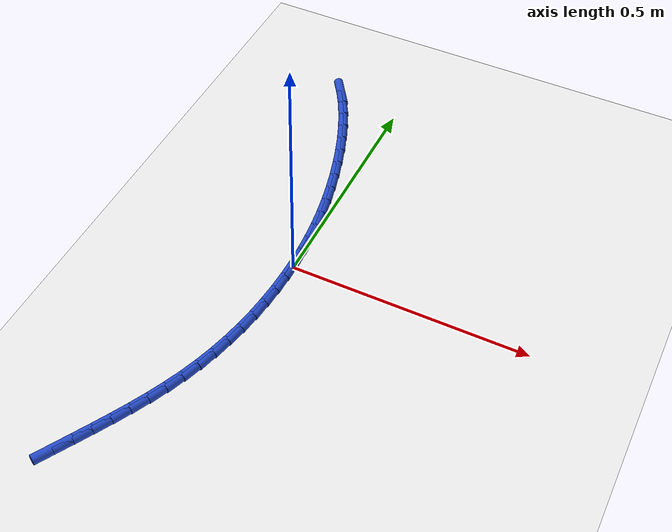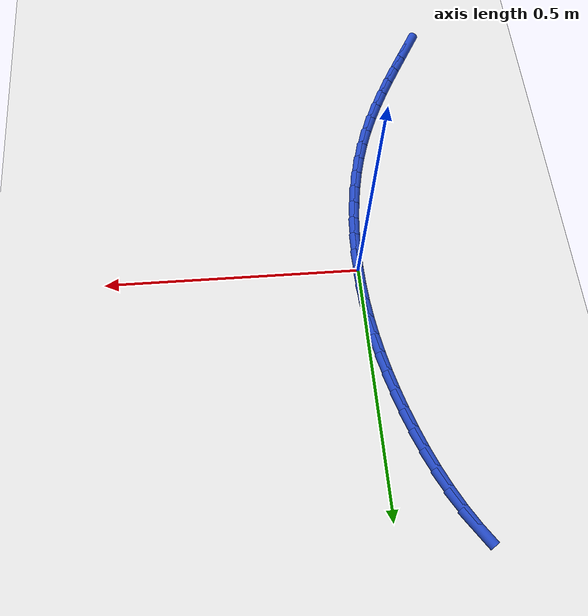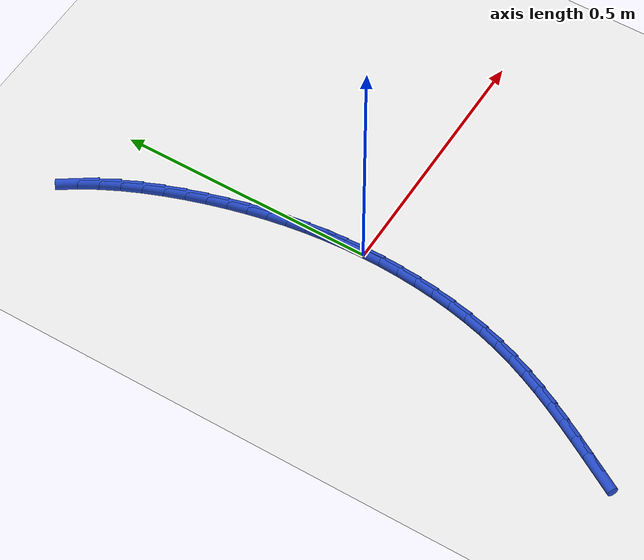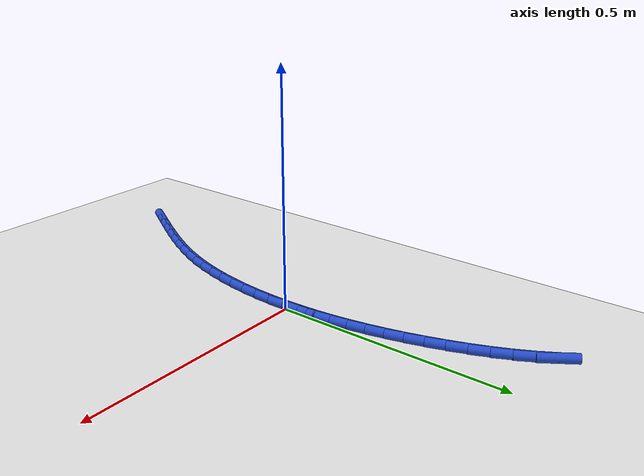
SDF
<sdf version="1.6">
 <world name="default">
  <model name="ground_plane">
   <static>1</static>
   <link name="link">
    <collision name="collision">
     <geometry><plane><normal>0 0 1</normal><size>100 100</size></plane></geometry>
     <surface><friction><ode><mu>100</mu><mu2>50</mu2></ode></friction></surface>
    </collision>
    <visual name="visual">
     <cast_shadows>0</cast_shadows>
     <geometry><plane><normal>0 0 1</normal><size>100 100</size></plane></geometry>
     <material>
      <script><uri>file://media/materials/scripts/gazebo.material</uri><name>Gazebo/WhiteGlow</name></script>
     </material>
    </visual>
   </link>
  </model>
  <model name="line">
   <link name="link_0">
    <pose>-3.469446951953614e-18 -1.3877787807814457e-17 0.01 0 1.57 -1.5446074560020244</pose>
    <collision name="collision">
     <geometry><cylinder><radius>0.01</radius><length>0.08</length></cylinder></geometry>
    </collision>
    <visual name="visual">
     <material>
      <script><name>Gazebo/Blue</name><uri>file://media/materials/scripts/gazebo.material</uri></script>
     </material>
     <geometry><cylinder><radius>0.01</radius><length>0.08</length></cylinder></geometry>
    </visual>
   </link>
   <link name="link_1">
    <pose>-0.0009925449880114148 0.03789083045452328 0.01 0 1.57 -1.5075537437832334</pose>
    <collision name="collision">
     <geometry><cylinder><radius>0.01</radius><length>0.08</length></cylinder></geometry>
    </collision>
    <visual name="visual">
     <material>
      <script><name>Gazebo/Blue</name><uri>file://media/materials/scripts/gazebo.material</uri></script>
     </material>
     <geometry><cylinder><radius>0.01</radius><length>0.08</length></cylinder></geometry>
    </visual>
   </link>
   <link name="link_2">
    <pose>-0.003380186408068941 0.07559418212864366 0.01 0 1.57 -1.4707269061510995</pose>
    <collision name="collision">
     <geometry><cylinder><radius>0.01</radius><length>0.08</length></cylinder></geometry>
    </collision>
    <visual name="visual">
     <material>
      <script><name>Gazebo/Blue</name><uri>file://media/materials/scripts/gazebo.material</uri></script>
     </material>
     <geometry><cylinder><radius>0.01</radius><length>0.08</length></cylinder></geometry>
    </visual>
   </link>
   <link name="link_3">
    <pose>-0.007151604039434886 0.11315630992442813 0.01 0 1.57 -1.4343590799724768</pose>
    <collision name="collision">
     <geometry><cylinder><radius>0.01</radius><length>0.08</length></cylinder></geometry>
    </collision>
    <visual name="visual">
     <material>
      <script><name>Gazebo/Blue</name><uri>file://media/materials/scripts/gazebo.material</uri></script>
     </material>
     <geometry><cylinder><radius>0.01</radius><length>0.08</length></cylinder></geometry>
    </visual>
   </link>
   <link name="link_4">
    <pose>-0.012295477661371568 0.15062346874394392 0.01 0 1.57 -1.3986715624035229</pose>
    <collision name="collision">
     <geometry><cylinder><radius>0.01</radius><length>0.08</length></cylinder></geometry>
    </collision>
    <visual name="visual">
     <material>
      <script><name>Gazebo/Blue</name><uri>file://media/materials/scripts/gazebo.material</uri></script>
     </material>
     <geometry><cylinder><radius>0.01</radius><length>0.08</length></cylinder></geometry>
    </visual>
   </link>
   <link name="link_5">
    <pose>-0.018800487053141284 0.18804191348925803 0.01 0 1.57 -1.363868947554436</pose>
    <collision name="collision">
     <geometry><cylinder><radius>0.01</radius><length>0.08</length></cylinder></geometry>
    </collision>
    <visual name="visual">
     <material>
      <script><name>Gazebo/Blue</name><uri>file://media/materials/scripts/gazebo.material</uri></script>
     </material>
     <geometry><cylinder><radius>0.01</radius><length>0.08</length></cylinder></geometry>
    </visual>
   </link>
   <link name="link_6">
    <pose>-0.026655311994006357 0.22545789906243777 0.01 0 1.57 -1.3301343674706478</pose>
    <collision name="collision">
     <geometry><cylinder><radius>0.01</radius><length>0.08</length></cylinder></geometry>
    </collision>
    <visual name="visual">
     <material>
      <script><name>Gazebo/Blue</name><uri>file://media/materials/scripts/gazebo.material</uri></script>
     </material>
     <geometry><cylinder><radius>0.01</radius><length>0.08</length></cylinder></geometry>
    </visual>
   </link>
   <link name="link_7">
    <pose>-0.035848632263229104 0.26291768036555013 0.01 0 1.57 -1.297626064435137</pose>
    <collision name="collision">
     <geometry><cylinder><radius>0.01</radius><length>0.08</length></cylinder></geometry>
    </collision>
    <visual name="visual">
     <material>
      <script><name>Gazebo/Blue</name><uri>file://media/materials/scripts/gazebo.material</uri></script>
     </material>
     <geometry><cylinder><radius>0.01</radius><length>0.08</length></cylinder></geometry>
    </visual>
   </link>
   <link name="link_8">
    <pose>-0.04636912764007181 0.3004675123006622 0.01 0 1.57 -1.2660317103342464</pose>
    <collision name="collision">
     <geometry><cylinder><radius>0.01</radius><length>0.08</length></cylinder></geometry>
    </collision>
    <visual name="visual">
     <material>
      <script><name>Gazebo/Blue</name><uri>file://media/materials/scripts/gazebo.material</uri></script>
     </material>
     <geometry><cylinder><radius>0.01</radius><length>0.08</length></cylinder></geometry>
    </visual>
   </link>
   <link name="link_9">
    <pose>-0.058215243698246634 0.338126290825912 0.01 0 1.57 -1.2317283287065706</pose>
    <collision name="collision">
     <geometry><cylinder><radius>0.01</radius><length>0.08</length></cylinder></geometry>
    </collision>
    <visual name="visual">
     <material>
      <script><name>Gazebo/Blue</name><uri>file://media/materials/scripts/gazebo.material</uri></script>
     </material>
     <geometry><cylinder><radius>0.01</radius><length>0.08</length></cylinder></geometry>
    </visual>
   </link>
   <link name="link_10">
    <pose>-0.07146426075824902 0.3756920557849671 0.01 0 1.57 -1.1925718208648208</pose>
    <collision name="collision">
     <geometry><cylinder><radius>0.01</radius><length>0.08</length></cylinder></geometry>
    </collision>
    <visual name="visual">
     <material>
      <script><name>Gazebo/Blue</name><uri>file://media/materials/scripts/gazebo.material</uri></script>
     </material>
     <geometry><cylinder><radius>0.01</radius><length>0.08</length></cylinder></geometry>
    </visual>
   </link>
   <link name="link_11">
    <pose>-0.08623157831619478 0.4128560558747242 0.01 0 1.57 -1.1479991837405814</pose>
    <collision name="collision">
     <geometry><cylinder><radius>0.01</radius><length>0.08</length></cylinder></geometry>
    </collision>
    <visual name="visual">
     <material>
      <script><name>Gazebo/Blue</name><uri>file://media/materials/scripts/gazebo.material</uri></script>
     </material>
     <geometry><cylinder><radius>0.01</radius><length>0.08</length></cylinder></geometry>
    </visual>
   </link>
   <link name="link_12">
    <pose>-0.10263284412014943 0.4493088443124439 0.01 0 1.57 -1.097379973854629</pose>
    <collision name="collision">
     <geometry><cylinder><radius>0.01</radius><length>0.08</length></cylinder></geometry>
    </collision>
    <visual name="visual">
     <material>
      <script><name>Gazebo/Blue</name><uri>file://media/materials/scripts/gazebo.material</uri></script>
     </material>
     <geometry><cylinder><radius>0.01</radius><length>0.08</length></cylinder></geometry>
    </visual>
   </link>
   <link name="link_13">
    <pose>-0.12078370591817847 0.48474097431538726 0.01 0 1.57 -1.0400293793883233</pose>
    <collision name="collision">
     <geometry><cylinder><radius>0.01</radius><length>0.08</length></cylinder></geometry>
    </collision>
    <visual name="visual">
     <material>
      <script><name>Gazebo/Blue</name><uri>file://media/materials/scripts/gazebo.material</uri></script>
     </material>
     <geometry><cylinder><radius>0.01</radius><length>0.08</length></cylinder></geometry>
    </visual>
   </link>
   <link name="link_14">
    <pose>-0.1407998114583474 0.5188429991008149 0.01 0 1.57 -0.97525365627535</pose>
    <collision name="collision">
     <geometry><cylinder><radius>0.01</radius><length>0.08</length></cylinder></geometry>
    </collision>
    <visual name="visual">
     <material>
      <script><name>Gazebo/Blue</name><uri>file://media/materials/scripts/gazebo.material</uri></script>
     </material>
     <geometry><cylinder><radius>0.01</radius><length>0.08</length></cylinder></geometry>
    </visual>
   </link>
   <link name="link_184">
    <pose>-0.18217920773776422 -0.5726048520960664 0.01 0 1.57 1.0443493442581033</pose>
    <collision name="collision">
     <geometry><cylinder><radius>0.01</radius><length>0.08</length></cylinder></geometry>
    </collision>
    <visual name="visual">
     <material>
      <script><name>Gazebo/Blue</name><uri>file://media/materials/scripts/gazebo.material</uri></script>
     </material>
     <geometry><cylinder><radius>0.01</radius><length>0.08</length></cylinder></geometry>
    </visual>
   </link>
   <link name="link_185">
    <pose>-0.16283293074222824 -0.5393154448025584 0.01 0 1.57 1.0485690302359187</pose>
    <collision name="collision">
     <geometry><cylinder><radius>0.01</radius><length>0.08</length></cylinder></geometry>
    </collision>
    <visual name="visual">
     <material>
      <script><name>Gazebo/Blue</name><uri>file://media/materials/scripts/gazebo.material</uri></script>
     </material>
     <geometry><cylinder><radius>0.01</radius><length>0.08</length></cylinder></geometry>
    </visual>
   </link>
   <link name="link_186">
    <pose>-0.14370639867060403 -0.5060821430209685 0.01 0 1.57 1.0595408152221097</pose>
    <collision name="collision">
     <geometry><cylinder><radius>0.01</radius><length>0.08</length></cylinder></geometry>
    </collision>
    <visual name="visual">
     <material>
      <script><name>Gazebo/Blue</name><uri>file://media/materials/scripts/gazebo.material</uri></script>
     </material>
     <geometry><cylinder><radius>0.01</radius><length>0.08</length></cylinder></geometry>
    </visual>
   </link>
   <link name="link_187">
    <pose>-0.12502378956635815 -0.4727802970791243 0.01 0 1.57 1.0773476647619045</pose>
    <collision name="collision">
     <geometry><cylinder><radius>0.01</radius><length>0.08</length></cylinder></geometry>
    </collision>
    <visual name="visual">
     <material>
      <script><name>Gazebo/Blue</name><uri>file://media/materials/scripts/gazebo.material</uri></script>
     </material>
     <geometry><cylinder><radius>0.01</radius><length>0.08</length></cylinder></geometry>
    </visual>
   </link>
   <link name="link_188">
    <pose>-0.10700928147295735 -0.4392852573048535 0.01 0 1.57 1.1020563133584893</pose>
    <collision name="collision">
     <geometry><cylinder><radius>0.01</radius><length>0.08</length></cylinder></geometry>
    </collision>
    <visual name="visual">
     <material>
      <script><name>Gazebo/Blue</name><uri>file://media/materials/scripts/gazebo.material</uri></script>
     </material>
     <geometry><cylinder><radius>0.01</radius><length>0.08</length></cylinder></geometry>
    </visual>
   </link>
   <link name="link_189">
    <pose>-0.08988705243386828 -0.40547237402598385 0.01 0 1.57 1.1336915224134523</pose>
    <collision name="collision">
     <geometry><cylinder><radius>0.01</radius><length>0.08</length></cylinder></geometry>
    </collision>
    <visual name="visual">
     <material>
      <script><name>Gazebo/Blue</name><uri>file://media/materials/scripts/gazebo.material</uri></script>
     </material>
     <geometry><cylinder><radius>0.01</radius><length>0.08</length></cylinder></geometry>
    </visual>
   </link>
   <link name="link_190">
    <pose>-0.0738812804925575 -0.37121699757034315 0.01 0 1.57 1.172200134622178</pose>
    <collision name="collision">
     <geometry><cylinder><radius>0.01</radius><length>0.08</length></cylinder></geometry>
    </collision>
    <visual name="visual">
     <material>
      <script><name>Gazebo/Blue</name><uri>file://media/materials/scripts/gazebo.material</uri></script>
     </material>
     <geometry><cylinder><radius>0.01</radius><length>0.08</length></cylinder></geometry>
    </visual>
   </link>
   <link name="link_191">
    <pose>-0.059216143692491716 -0.33639447826575897 0.01 0 1.57 1.2173894868914164</pose>
    <collision name="collision">
     <geometry><cylinder><radius>0.01</radius><length>0.08</length></cylinder></geometry>
    </collision>
    <visual name="visual">
     <material>
      <script><name>Gazebo/Blue</name><uri>file://media/materials/scripts/gazebo.material</uri></script>
     </material>
     <geometry><cylinder><radius>0.01</radius><length>0.08</length></cylinder></geometry>
    </visual>
   </link>
   <link name="link_192">
    <pose>-0.04611530294209437 -0.300880653006687 0.01 0 1.57 1.2663358285726665</pose>
    <collision name="collision">
     <geometry><cylinder><radius>0.01</radius><length>0.08</length></cylinder></geometry>
    </collision>
    <visual name="visual">
     <material>
      <script><name>Gazebo/Blue</name><uri>file://media/materials/scripts/gazebo.material</uri></script>
     </material>
     <geometry><cylinder><radius>0.01</radius><length>0.08</length></cylinder></geometry>
    </visual>
   </link>
   <link name="link_193">
    <pose>-0.0347230128789838 -0.26462607116709846 0.01 0 1.57 1.313580646801593</pose>
    <collision name="collision">
     <geometry><cylinder><radius>0.01</radius><length>0.08</length></cylinder></geometry>
    </collision>
    <visual name="visual">
     <material>
      <script><name>Gazebo/Blue</name><uri>file://media/materials/scripts/gazebo.material</uri></script>
     </material>
     <geometry><cylinder><radius>0.01</radius><length>0.08</length></cylinder></geometry>
    </visual>
   </link>
   <link name="link_194">
    <pose>-0.02501930703289921 -0.22773579594002288 0.01 0 1.57 1.3586610934931374</pose>
    <collision name="collision">
     <geometry><cylinder><radius>0.01</radius><length>0.08</length></cylinder></geometry>
    </collision>
    <visual name="visual">
     <material>
      <script><name>Gazebo/Blue</name><uri>file://media/materials/scripts/gazebo.material</uri></script>
     </material>
     <geometry><cylinder><radius>0.01</radius><length>0.08</length></cylinder></geometry>
    </visual>
   </link>
   <link name="link_195">
    <pose>-0.01696387575180601 -0.19033403119259704 0.01 0 1.57 1.4018062538590341</pose>
    <collision name="collision">
     <geometry><cylinder><radius>0.01</radius><length>0.08</length></cylinder></geometry>
    </collision>
    <visual name="visual">
     <material>
      <script><name>Gazebo/Blue</name><uri>file://media/materials/scripts/gazebo.material</uri></script>
     </material>
     <geometry><cylinder><radius>0.01</radius><length>0.08</length></cylinder></geometry>
    </visual>
   </link>
   <link name="link_196">
    <pose>-0.010516409383669613 -0.15254498079195775 0.01 0 1.57 1.4432523140994502</pose>
    <collision name="collision">
     <geometry><cylinder><radius>0.01</radius><length>0.08</length></cylinder></geometry>
    </collision>
    <visual name="visual">
     <material>
      <script><name>Gazebo/Blue</name><uri>file://media/materials/scripts/gazebo.material</uri></script>
     </material>
     <geometry><cylinder><radius>0.01</radius><length>0.08</length></cylinder></geometry>
    </visual>
   </link>
   <link name="link_197">
    <pose>-0.005636598276455407 -0.11449284860524167 0.01 0 1.57 1.483239224598426</pose>
    <collision name="collision">
     <geometry><cylinder><radius>0.01</radius><length>0.08</length></cylinder></geometry>
    </collision>
    <visual name="visual">
     <material>
      <script><name>Gazebo/Blue</name><uri>file://media/materials/scripts/gazebo.material</uri></script>
     </material>
     <geometry><cylinder><radius>0.01</radius><length>0.08</length></cylinder></geometry>
    </visual>
   </link>
   <link name="link_198">
    <pose>-0.0022841327781288026 -0.07630183849958544 0.01 0 1.57 1.5220091025878955</pose>
    <collision name="collision">
     <geometry><cylinder><radius>0.01</radius><length>0.08</length></cylinder></geometry>
    </collision>
    <visual name="visual">
     <material>
      <script><name>Gazebo/Blue</name><uri>file://media/materials/scripts/gazebo.material</uri></script>
     </material>
     <geometry><cylinder><radius>0.01</radius><length>0.08</length></cylinder></geometry>
    </visual>
   </link>
   <link name="link_199">
    <pose>-0.000418703236655194 -0.038096154342125904 0.01 0 1.57 1.5598060736849197</pose>
    <collision name="collision">
     <geometry><cylinder><radius>0.01</radius><length>0.08</length></cylinder></geometry>
    </collision>
    <visual name="visual">
     <material>
      <script><name>Gazebo/Blue</name><uri>file://media/materials/scripts/gazebo.material</uri></script>
     </material>
     <geometry><cylinder><radius>0.01</radius><length>0.08</length></cylinder></geometry>
    </visual>
   </link>
   <link name="link_200">
    <pose>4.336808689942018e-18 2.636779683484747e-16 0.01 0 1.57 -1.5447153357949546</pose>
    <collision name="collision">
     <geometry><cylinder><radius>0.01</radius><length>0.08</length></cylinder></geometry>
    </collision>
    <visual name="visual">
     <material>
      <script><name>Gazebo/Blue</name><uri>file://media/materials/scripts/gazebo.material</uri></script>
     </material>
     <geometry><cylinder><radius>0.01</radius><length>0.08</length></cylinder></geometry>
    </visual>
   </link>
   <link name="link_201">
    <pose>-0.0009877134161286397 0.03786242065965716 0.01 0 1.57 -1.5447153357949548</pose>
    <collision name="collision">
     <geometry><cylinder><radius>0.01</radius><length>0.08</length></cylinder></geometry>
    </collision>
    <visual name="visual">
     <material>
      <script><name>Gazebo/Blue</name><uri>file://media/materials/scripts/gazebo.material</uri></script>
     </material>
     <geometry><cylinder><radius>0.01</radius><length>0.08</length></cylinder></geometry>
    </visual>
   </link>
  </model>
 </world>
</sdf>
